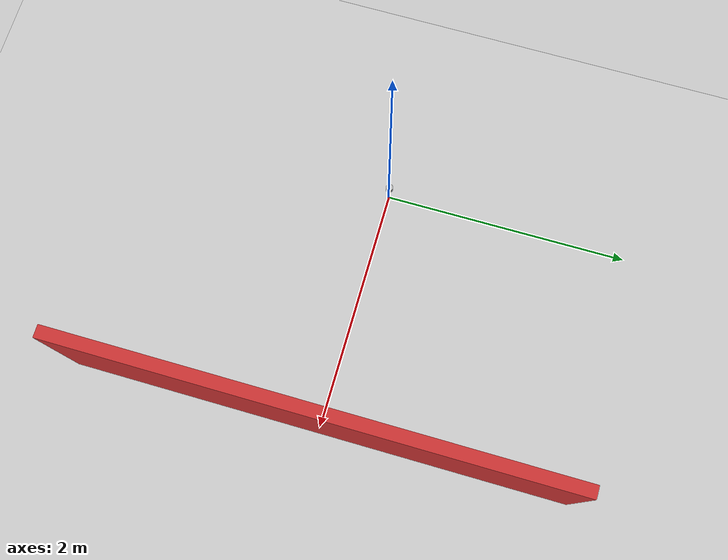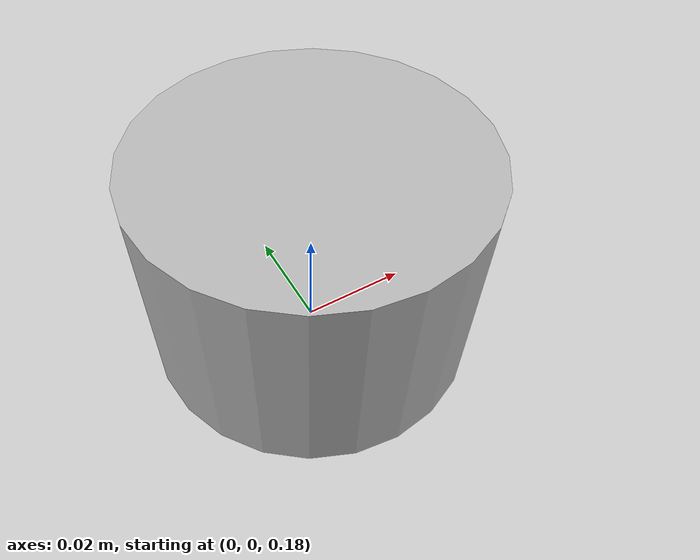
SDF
<?xml version="1.0" encoding="UTF-8"?>
<sdf version="1.6">
  <world name="lidar_test">
    <scene>
      <shadows>1</shadows>
      <ambient>0.4 0.4 0.4 1</ambient>
      <background>0.7 0.7 0.7 1</background>
    </scene>

    <include>
      <uri>model://ground_plane</uri>
    </include>
    <include>
      <uri>model://sun</uri>
    </include>

    <!-- Simple target wall so the scan has returns -->
    <model name="wall">
      <static>true</static>
      <pose>2 0 0.5 0 0 0</pose>
      <link name="wall_link">
        <collision name="collision">
          <geometry>
            <box>
              <size>0.1 4 1</size>
            </box>
          </geometry>
        </collision>
        <visual name="visual">
          <geometry>
            <box>
              <size>0.1 4 1</size>
            </box>
          </geometry>
          <material>
            <ambient>0.8 0.2 0.2 1</ambient>
            <diffuse>0.8 0.2 0.2 1</diffuse>
          </material>
        </visual>
      </link>
    </model>

    <!-- Lidar-only test rig -->
    <model name="lidar_rig">
      <static>true</static>
      <pose>0 0 0 0 0 0</pose>
      <link name="lidar_link">
        <pose>0 0 0.2 0 0 0</pose>
        <visual name="lidar_visual">
          <geometry>
            <cylinder>
              <radius>0.03</radius>
              <length>0.04</length>
            </cylinder>
          </geometry>
        </visual>
        <sensor name="test_lidar" type="ray">
          <pose>0 0 0 0 0 0</pose>
          <topic>/scan</topic>
          <update_rate>10</update_rate>
          <ray>
            <scan>
              <horizontal>
                <min_angle>-2.35619449</min_angle>
                <max_angle>2.35619449</max_angle>
                <samples>1080</samples>
                <resolution>1</resolution>
              </horizontal>
              <vertical>
                <samples>1</samples>
                <resolution>1</resolution>
                <min_angle>0</min_angle>
                <max_angle>0</max_angle>
              </vertical>
            </scan>
            <range>
              <min>0.05</min>
              <max>10.0</max>
              <resolution>0.01</resolution>
            </range>
            <noise type="gaussian">
              <mean>0.0</mean>
              <stddev>0.01</stddev>
            </noise>
          </ray>
          <always_on>1</always_on>
          <visualize>true</visualize>
        </sensor>
      </link>
    </model>

    <!-- SENSOR PLUGIN -->
    <plugin
      filename="libignition-gazebo-sensors-system.so"
      name="ignition::gazebo::systems::Sensors">
      <render_engine>ogre2</render_engine>
    </plugin>
  </world>
</sdf>
